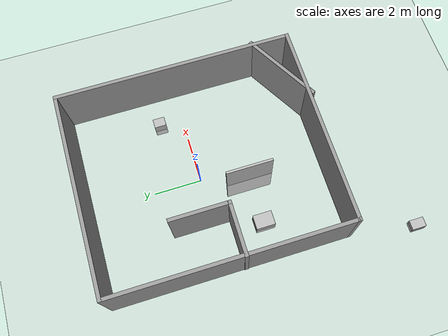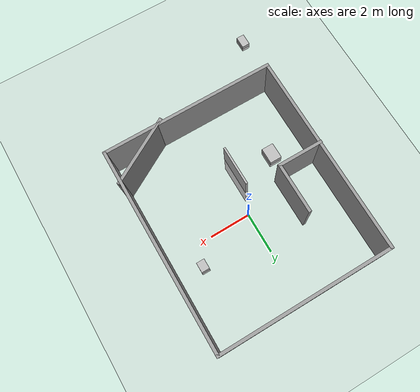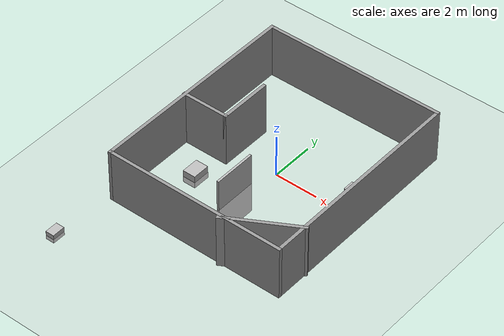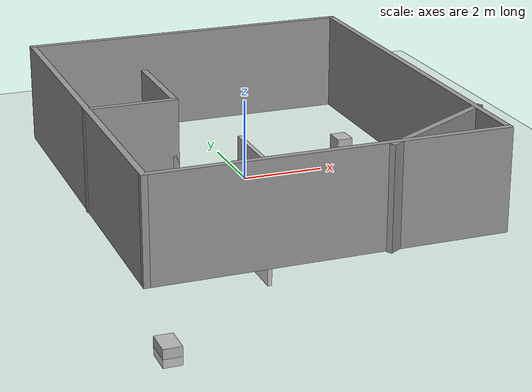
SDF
<sdf version="1.7">
 <world name="default">
  <light name="sun" type="directional">
   <pose>0 0 10 0 -0 0</pose>
   <diffuse>0.8 0.8 0.8 1</diffuse>
   <specular>0.2 0.2 0.2 1</specular>
   <attenuation>
    <range>1000</range>
    <constant>0.9</constant>
    <linear>0.01</linear>
    <quadratic>0.001</quadratic>
   </attenuation>
   <direction>-0.5 0.1 -0.9</direction>
   <spot><inner_angle>0</inner_angle><outer_angle>0</outer_angle><falloff>0</falloff></spot>
  </light>
  <model name="ground_plane">
   <static>1</static>
   <link name="link">
    <collision name="collision">
     <geometry><plane><normal>0 0 1</normal><size>100 100</size></plane></geometry>
     <surface><friction><ode><mu>100</mu><mu2>50</mu2></ode></friction></surface>
    </collision>
    <visual name="visual">
     <cast_shadows>0</cast_shadows>
     <geometry><plane><normal>0 0 1</normal><size>100 100</size></plane></geometry>
     <material>
      <script><uri>file://media/materials/scripts/gazebo.material</uri><name>Gazebo/Grey</name></script>
     </material>
    </visual>
   </link>
  </model>
  <gravity>0 0 -9.8</gravity>
  <magnetic_field>6e-06 2.3e-05 -4.2e-05</magnetic_field>
  <atmosphere type="adiabatic"/>
  <physics type="ode">
   <max_step_size>0.001</max_step_size>
   <real_time_factor>1</real_time_factor>
   <real_time_update_rate>1000</real_time_update_rate>
  </physics>
  <scene><ambient>0.4 0.4 0.4 1</ambient><background>0.7 0.7 0.7 1</background><shadows>1</shadows></scene>
  <audio><device>default</device></audio>
  <spherical_coordinates>
   <surface_model>EARTH_WGS84</surface_model>
   <latitude_deg>0</latitude_deg>
   <longitude_deg>0</longitude_deg>
   <elevation>0</elevation>
   <heading_deg>0</heading_deg>
  </spherical_coordinates>
  <model name="box1">
   <pose>3 1 0 0 0 0</pose>
   <link name="link">
    <collision name="collision"><geometry><box><size>0.4 0.5 0.8</size></box></geometry></collision>
    <visual name="visual"><geometry><box><size>0.4 0.5 0.8</size></box></geometry></visual>
   </link>
   <plugin name="push_animate_1" filename="libanimated_box_1.so"/>
  </model>
  <model name="box2">
   <pose>-2.5 -2 0 0 0 0</pose>
   <link name="link">
    <collision name="collision"><geometry><box><size>0.6 0.8 0.6</size></box></geometry></collision>
    <visual name="visual"><geometry><box><size>0.6 0.8 0.6</size></box></geometry></visual>
   </link>
   <plugin name="push_animate_2" filename="libanimated_box_2.so"/>
  </model>
  <model name="box3">
   <pose>-0.5 -2 0 0 0 0</pose>
   <link name="link">
    <collision name="collision"><geometry><box><size>0.1 2 3</size></box></geometry></collision>
    <visual name="visual"><geometry><box><size>0.1 2 3</size></box></geometry></visual>
   </link>
   <plugin name="push_animate_3" filename="libanimated_box_3.so"/>
  </model>
  <model name="box4">
   <pose>-4.5 -8 0 0 0 0</pose>
   <link name="link">
    <collision name="collision"><geometry><box><size>0.4 0.6 0.4</size></box></geometry></collision>
    <visual name="visual"><geometry><box><size>0.4 0.6 0.4</size></box></geometry></visual>
   </link>
   <plugin name="push_animate_4" filename="libanimated_box_4.so"/>
  </model>
  <model name="realMap">
   <pose>0.137424 -0.297187 0 0 -0 0</pose>
   <link name="Wall_59">
    <collision name="Wall_59_Collision">
     <geometry><box><size>10 0.15 2.5</size></box></geometry>
     <pose>0 0 1.25 0 -0 0</pose>
    </collision>
    <visual name="Wall_59_Visual">
     <pose>0 0 1.25 0 -0 0</pose>
     <geometry><box><size>10 0.15 2.5</size></box></geometry>
     <material>
      <script><uri>file://media/materials/scripts/gazebo.material</uri><name>Gazebo/Grey</name></script>
      <ambient>1 1 1 1</ambient>
     </material>
     <meta><layer>0</layer></meta>
    </visual>
    <pose>-4.21126 0.080562 0 0 -0 1.5708</pose>
   </link>
   <link name="Wall_60">
    <collision name="Wall_60_Collision">
     <geometry><box><size>8.5 0.15 2.5</size></box></geometry>
     <pose>0 0 1.25 0 -0 0</pose>
    </collision>
    <visual name="Wall_60_Visual">
     <pose>0 0 1.25 0 -0 0</pose>
     <geometry><box><size>8.5 0.15 2.5</size></box></geometry>
     <material>
      <script><uri>file://media/materials/scripts/gazebo.material</uri><name>Gazebo/Grey</name></script>
      <ambient>1 1 1 1</ambient>
     </material>
     <meta><layer>0</layer></meta>
    </visual>
    <pose>-0.036259 5.00556 0 0 -0 0</pose>
   </link>
   <link name="Wall_61">
    <collision name="Wall_61_Collision">
     <geometry><box><size>10 0.15 2.5</size></box></geometry>
     <pose>0 0 1.25 0 -0 0</pose>
    </collision>
    <visual name="Wall_61_Visual">
     <pose>0 0 1.25 0 -0 0</pose>
     <geometry><box><size>10 0.15 2.5</size></box></geometry>
     <material>
      <script><uri>file://media/materials/scripts/gazebo.material</uri><name>Gazebo/Grey</name></script>
      <ambient>1 1 1 1</ambient>
     </material>
     <meta><layer>0</layer></meta>
    </visual>
    <pose>4.13874 0.080562 0 0 -0 -1.5708</pose>
   </link>
   <link name="Wall_62">
    <collision name="Wall_62_Collision">
     <geometry><box><size>8.5 0.15 2.5</size></box></geometry>
     <pose>0 0 1.25 0 -0 0</pose>
    </collision>
    <visual name="Wall_62_Visual">
     <pose>0 0 1.25 0 -0 0</pose>
     <geometry><box><size>8.5 0.15 2.5</size></box></geometry>
     <material>
      <script><uri>file://media/materials/scripts/gazebo.material</uri><name>Gazebo/Grey</name></script>
      <ambient>1 1 1 1</ambient>
     </material>
     <meta><layer>0</layer></meta>
    </visual>
    <pose>-0.036259 -4.84444 0 0 -0 3.14159</pose>
   </link>
   <link name="Wall_64">
    <collision name="Wall_64_Collision">
     <geometry><box><size>3.5 0.15 2.5</size></box></geometry>
     <pose>0 0 1.25 0 -0 0</pose>
    </collision>
    <visual name="Wall_64_Visual">
     <pose>0 0 1.25 0 -0 0</pose>
     <geometry><box><size>3.5 0.15 2.5</size></box></geometry>
     <material>
      <script><uri>file://media/materials/scripts/gazebo.material</uri><name>Gazebo/Grey</name></script>
      <ambient>1 1 1 1</ambient>
     </material>
     <meta><layer>0</layer></meta>
    </visual>
    <pose>2.75851 -4.14061 0 0 -0 0.523599</pose>
   </link>
   <link name="Wall_70">
    <collision name="Wall_70_Collision">
     <geometry><box><size>2.25 0.15 2.5</size></box></geometry>
     <pose>0 0 1.25 0 -0 0</pose>
    </collision>
    <visual name="Wall_70_Visual">
     <pose>0 0 1.25 0 -0 0</pose>
     <geometry><box><size>2.25 0.15 2.5</size></box></geometry>
     <material>
      <script><uri>file://media/materials/scripts/gazebo.material</uri><name>Gazebo/Grey</name></script>
      <ambient>1 1 1 1</ambient>
     </material>
     <meta><layer>0</layer></meta>
    </visual>
    <pose>-3.18655 -0.427676 0 0 -0 0</pose>
   </link>
   <link name="Wall_71">
    <collision name="Wall_71_Collision">
     <geometry><box><size>2.5 0.15 2.5</size></box></geometry>
     <pose>0 0 1.25 0 -0 0</pose>
    </collision>
    <visual name="Wall_71_Visual">
     <pose>0 0 1.25 0 -0 0</pose>
     <geometry><box><size>2.5 0.15 2.5</size></box></geometry>
     <material>
      <script><uri>file://media/materials/scripts/gazebo.material</uri><name>Gazebo/Grey</name></script>
      <ambient>1 1 1 1</ambient>
     </material>
     <meta><layer>0</layer></meta>
    </visual>
    <pose>-2.13655 0.747324 0 0 -0 1.5708</pose>
   </link>
   <static>1</static>
  </model>
 </world>
</sdf>
